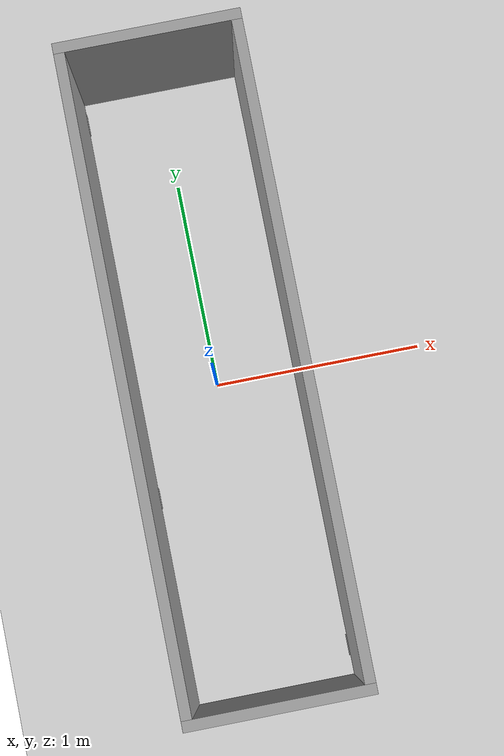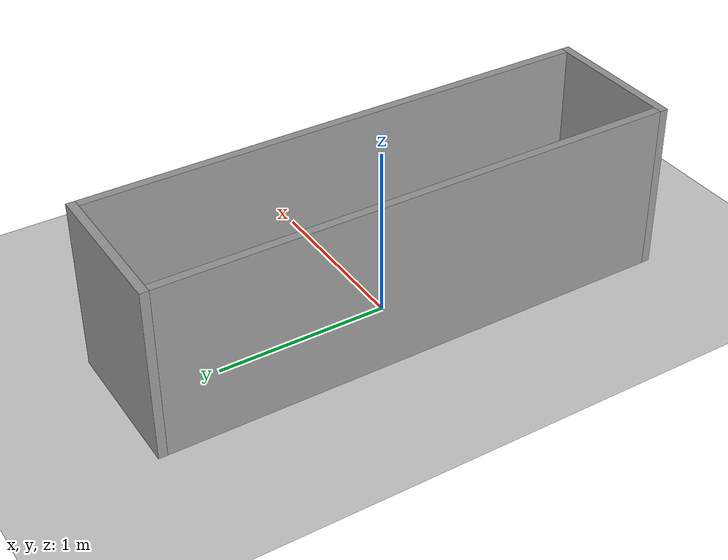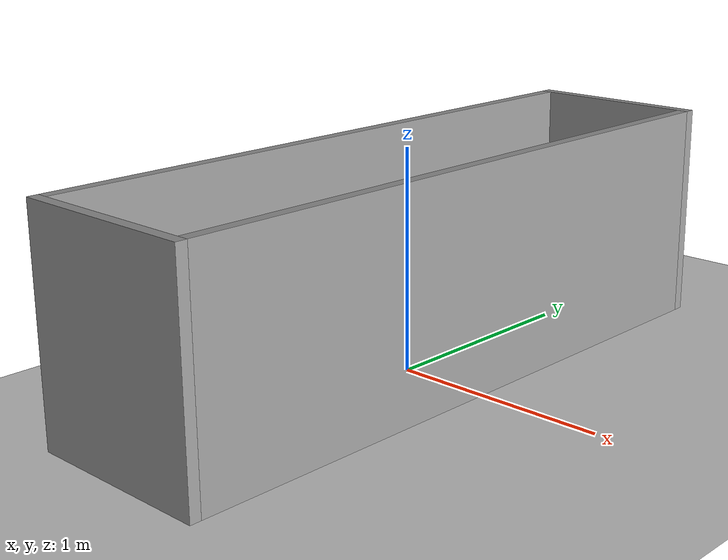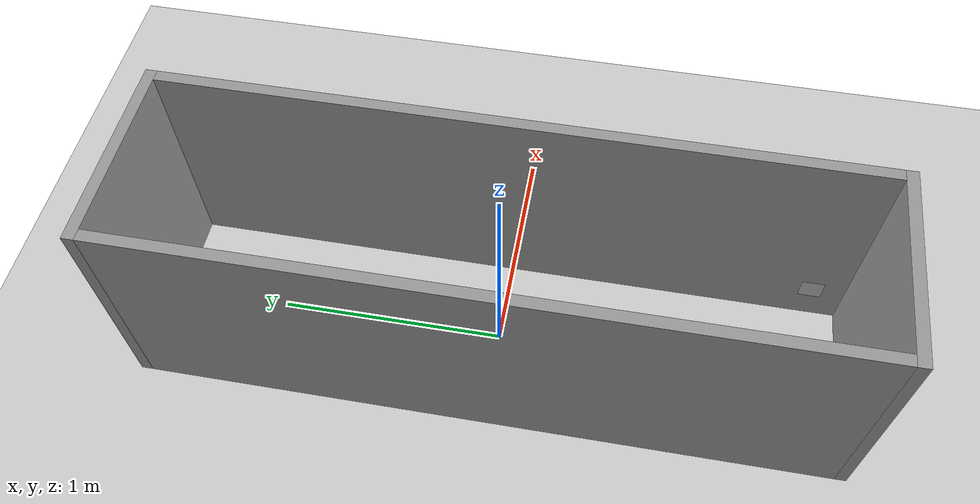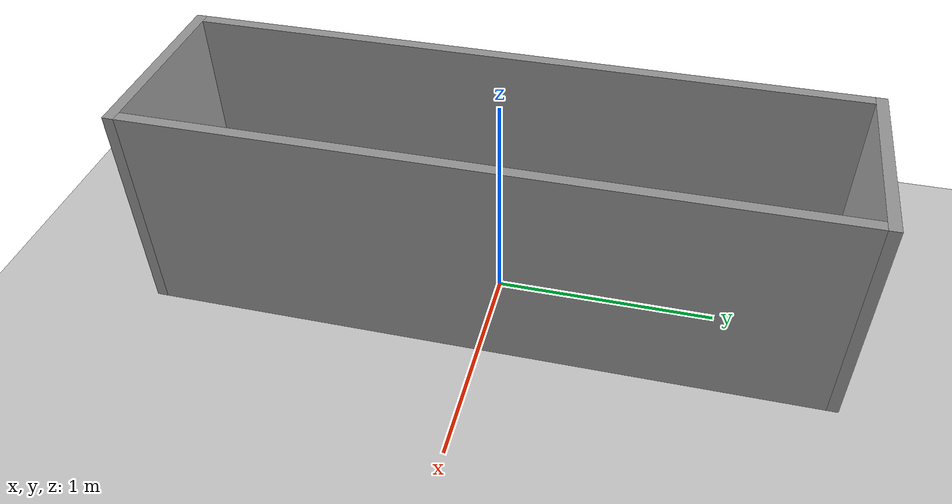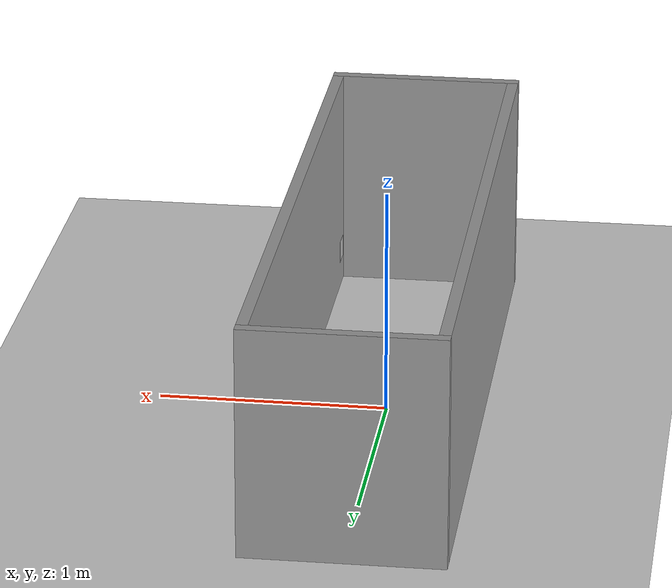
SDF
<?xml version="1.0" ?>
<sdf version="1.6">
  <world name="default">

    <!-- Iluminacion y fisica estandar -->
    <include>
      <uri>model://sun</uri>
    </include>
    <include>
      <uri>model://ground_plane</uri>
    </include>

    <gravity>0 0 -9.8</gravity>
    <physics type="ode">
      <max_step_size>0.001</max_step_size>
      <real_time_factor>1.0</real_time_factor>
      <real_time_update_rate>1000</real_time_update_rate>
    </physics>

    <model name="wall_north">
      <static>true</static>
      <pose>0 1.525 0.5 0 0 0</pose>
      <link name="link">
        <collision name="c"><geometry><box><size>0.86 0.05 1.0</size></box></geometry></collision>
        <visual name="v">
          <geometry><box><size>0.86 0.05 1.0</size></box></geometry>
          <material><script><uri>file://media/materials/scripts/gazebo.material</uri><name>Gazebo/Grey</name></script></material>
        </visual>
      </link>
    </model>

    <model name="wall_south">
      <static>true</static>
      <pose>0 -1.525 0.5 0 0 0</pose>
      <link name="link">
        <collision name="c"><geometry><box><size>0.86 0.05 1.0</size></box></geometry></collision>
        <visual name="v">
          <geometry><box><size>0.86 0.05 1.0</size></box></geometry>
          <material><script><uri>file://media/materials/scripts/gazebo.material</uri><name>Gazebo/Grey</name></script></material>
        </visual>
      </link>
    </model>

    <model name="wall_west">
      <static>true</static>
      <pose>-0.405 0 0.5 0 0 0</pose>
      <link name="link">
        <collision name="c"><geometry><box><size>0.05 3.0 1.0</size></box></geometry></collision>
        <visual name="v">
          <geometry><box><size>0.05 3.0 1.0</size></box></geometry>
          <material><script><uri>file://media/materials/scripts/gazebo.material</uri><name>Gazebo/Grey</name></script></material>
        </visual>
      </link>
    </model>

    <model name="wall_east">
      <static>true</static>
      <pose>0.405 0 0.5 0 0 0</pose>
      <link name="link">
        <collision name="c"><geometry><box><size>0.05 3.0 1.0</size></box></geometry></collision>
        <visual name="v">
          <geometry><box><size>0.05 3.0 1.0</size></box></geometry>
          <material><script><uri>file://media/materials/scripts/gazebo.material</uri><name>Gazebo/Grey</name></script></material>
        </visual>
      </link>
    </model>

    <!-- ArUco fiducial markers (auto-generated) -->
    <include>
      <name>aruco_marker_0</name>
      <uri>model://aruco_marker_0</uri>
      <pose>-0.37 1.35 0.2 1.5707963267948963 0.0 1.5707963267948963</pose>
    </include>
    <include>
      <name>aruco_marker_1</name>
      <uri>model://aruco_marker_1</uri>
      <pose>0.37 -1.35 0.2 1.5707963267948963 0.0 -1.5707963267948963</pose>
    </include>
    <include>
      <name>aruco_marker_2</name>
      <uri>model://aruco_marker_2</uri>
      <pose>-0.37 -0.5 0.2 1.5707963267948963 0.0 1.5707963267948963</pose>
    </include>
  </world>
</sdf>

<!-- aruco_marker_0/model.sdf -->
<sdf version="1.6">
  <model name="aruco_marker_0">
    <static>true</static>
    <link name="link">
      <visual name="visual">
        <cast_shadows>false</cast_shadows>
        <geometry>
          <box><size>0.1 0.1 0.001</size></box>
        </geometry>
        <material>
          <script>
            <uri>model://aruco_marker_0/materials/scripts</uri>
            <uri>model://aruco_marker_0/materials/textures</uri>
            <name>ArucoMarker/Id0</name>
          </script>
        </material>
      </visual>
      <collision name="collision">
        <geometry>
          <box><size>0.1 0.1 0.001</size></box>
        </geometry>
      </collision>
    </link>
  </model>
</sdf>

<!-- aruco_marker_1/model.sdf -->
<sdf version="1.6">
  <model name="aruco_marker_1">
    <static>true</static>
    <link name="link">
      <visual name="visual">
        <cast_shadows>false</cast_shadows>
        <geometry>
          <box><size>0.1 0.1 0.001</size></box>
        </geometry>
        <material>
          <script>
            <uri>model://aruco_marker_1/materials/scripts</uri>
            <uri>model://aruco_marker_1/materials/textures</uri>
            <name>ArucoMarker/Id1</name>
          </script>
        </material>
      </visual>
      <collision name="collision">
        <geometry>
          <box><size>0.1 0.1 0.001</size></box>
        </geometry>
      </collision>
    </link>
  </model>
</sdf>

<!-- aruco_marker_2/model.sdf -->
<sdf version="1.6">
  <model name="aruco_marker_2">
    <static>true</static>
    <link name="link">
      <visual name="visual">
        <cast_shadows>false</cast_shadows>
        <geometry>
          <box><size>0.1 0.1 0.001</size></box>
        </geometry>
        <material>
          <script>
            <uri>model://aruco_marker_2/materials/scripts</uri>
            <uri>model://aruco_marker_2/materials/textures</uri>
            <name>ArucoMarker/Id2</name>
          </script>
        </material>
      </visual>
      <collision name="collision">
        <geometry>
          <box><size>0.1 0.1 0.001</size></box>
        </geometry>
      </collision>
    </link>
  </model>
</sdf>
